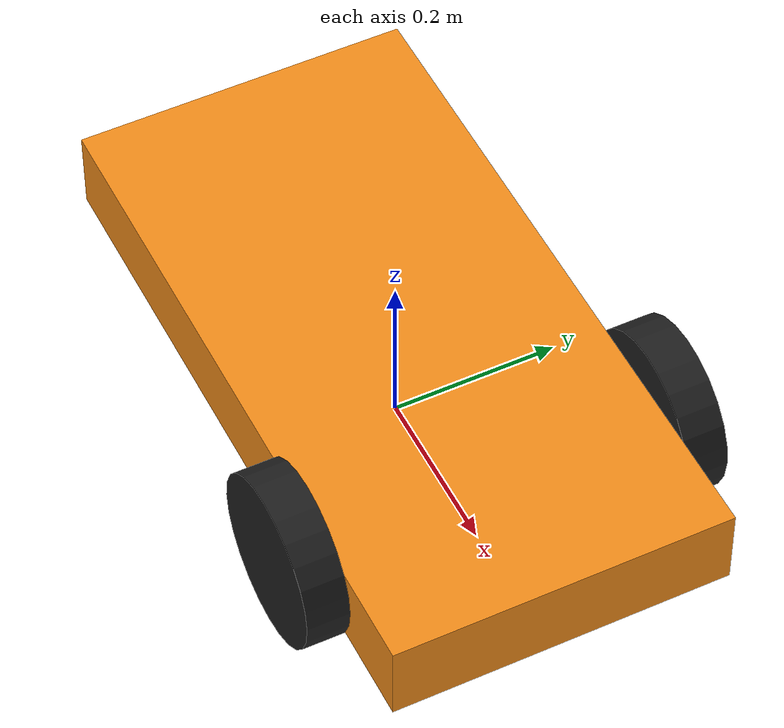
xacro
<?xml version="1.0"?>
<robot name="mybot" xmlns:xacro="http://www.ros.org/wiki/xacro">

  <xacro:property name="PI" value="3.1415926535897931"/>
  <xacro:property name="chassisHeight" value="0.1"/>
  <xacro:property name="chassisLength" value="0.8"/>
  <xacro:property name="chassisWidth" value="0.4"/>
  <xacro:property name="chassisMass" value="50"/>
  <xacro:property name="casterRadius" value="0.05"/>
  <xacro:property name="casterMass" value="5"/>
  <xacro:property name="wheelWidth" value="0.05"/>
  <xacro:property name="wheelRadius" value="0.1"/>
  <xacro:property name="wheelPos" value="0.2"/>
  <xacro:property name="wheelMass" value="5"/>
  <xacro:property name="cameraSize" value="0.05"/>
  <xacro:property name="cameraMass" value="0.1"/>

  <gazebo>
    <plugin name="gazebo_ros_control" filename="libgazebo_ros_control.so">
      <robotNamespace>/mybot</robotNamespace>
      <robotSimType>gazebo_ros_control/DefaultRobotHWSim</robotSimType>
      <!-- gazebo_ros_control/DefaultRobotHWSim,  hector_quadrotor_controller_gazebo/QuadrotorHardwareSim -->
    </plugin>
  </gazebo>

  <macro name="cylinder_inertia" params="m r h">
    <inertia  ixx="${m*(3*r*r+h*h)/12}" ixy = "0" ixz = "0"
              iyy="${m*(3*r*r+h*h)/12}" iyz = "0"
              izz="${m*r*r/2}" />
  </macro>

  <macro name="box_inertia" params="m x y z">
    <inertia  ixx="${m*(y*y+z*z)/12}" ixy = "0" ixz = "0"
              iyy="${m*(x*x+z*z)/12}" iyz = "0"
              izz="${m*(x*x+z*z)/12}" />
  </macro>

  <macro name="sphere_inertia" params="m r">
    <inertia  ixx="${2*m*r*r/5}" ixy = "0" ixz = "0"
              iyy="${2*m*r*r/5}" iyz = "0"
              izz="${2*m*r*r/5}" />
  </macro>

  <macro name="wheel" params="lr tY">

    <joint name="${lr}_wheel_hinge" type="continuous">
      <parent link="chassis"/>
      <child link="${lr}_wheel"/>
      <origin xyz="${-wheelPos+chassisLength/2} ${tY*wheelWidth/2+tY*chassisWidth/2} ${wheelRadius}" rpy="0 0 0" />
      <axis xyz="0 1 0" rpy="0 0 0" />
      <limit effort="100" velocity="100"/>
      <joint_properties damping="0.0" friction="0.0"/>
    </joint>

    <link name="${lr}_wheel">
      <collision>
        <origin xyz="0 0 0" rpy="0 ${PI/2} ${PI/2}" />
        <geometry>
          <cylinder length="${wheelWidth}" radius="${wheelRadius}"/>
        </geometry>
      </collision>

      <visual>
        <origin xyz="0 0 0" rpy="0 ${PI/2} ${PI/2}" />
        <geometry>
          <cylinder length="${wheelWidth}" radius="${wheelRadius}"/>
        </geometry>
      </visual>

      <inertial>
        <origin xyz="0 0 0" rpy="0 ${PI/2} ${PI/2}" />
        <mass value="${wheelMass}"/>
        <cylinder_inertia m="${wheelMass}" r="${wheelRadius}" h="${wheelWidth}"/>
      </inertial>
    </link>

    <gazebo reference="${lr}_wheel">
      <material>Gazebo/Black</material>
    </gazebo>

    <transmission name="${lr}_trans">
      <type>transmission_interface/SimpleTransmission</type>
      <joint name="${lr}_wheel_hinge"><hardwareInterface>EffortJointInterface</hardwareInterface></joint>
      <actuator name="${lr}Motor">
        <hardwareInterface>EffortJointInterface</hardwareInterface>
        <mechanicalReduction>10</mechanicalReduction>
      </actuator>
    </transmission>

  </macro>

  <link name="footprint" />

  <joint name="base_joint" type="fixed">
    <parent link="footprint"/>
    <child link="chassis"/>
  </joint>

  <link name='chassis'>
    <collision>
      <origin xyz="0 0 ${wheelRadius}" rpy="0 0 0"/>
      <geometry>
        <box size="${chassisLength} ${chassisWidth} ${chassisHeight}"/>
      </geometry>
    </collision>
    <visual>
      <origin xyz="0 0 ${wheelRadius}" rpy="0 0 0"/>
        <geometry>
          <box size="${chassisLength} ${chassisWidth} ${chassisHeight}"/>
        </geometry>
      <material name="orange"/>
    </visual>
    <inertial>
      <origin xyz="0 0 ${wheelRadius}" rpy="0 0 0"/>
      <mass value="${chassisMass}"/>
      <box_inertia m="${chassisMass}" x="${chassisLength}" y="${chassisWidth}" z="${chassisHeight}"/>
    </inertial>
  </link>
  <gazebo reference="chassis">
    <material>Gazebo/Orange</material>
  </gazebo>

  <joint name="heart_joint" type="fixed">
    <origin xyz="0 0 ${wheelRadius+chassisHeight*0.5}" rpy="0 0 0"/>
    <parent link="chassis"/>
    <child link="heart"/>
  </joint>

  <link name="heart" />

  <joint name="fixed" type="fixed">
    <parent link="chassis"/>
    <child link="caster_wheel"/>
  </joint>

  <link name="caster_wheel">
    <collision>
      <origin xyz="${casterRadius-chassisLength/2} 0 ${casterRadius-chassisHeight+wheelRadius}" rpy="0 0 0"/>
      <geometry>
        <sphere radius="${casterRadius}"/>
      </geometry>
    </collision>

    <visual>
      <origin xyz="${casterRadius-chassisLength/2} 0 ${casterRadius-chassisHeight+wheelRadius}" rpy="0 0 0"/>
      <geometry>
        <sphere radius="${casterRadius}"/>
      </geometry>
      <material name="red"/>
    </visual>

    <inertial>
      <origin xyz="${casterRadius-chassisLength/2} 0 ${casterRadius-chassisHeight+wheelRadius}" rpy="0 0 0"/>
      <mass value="${casterMass}"/>
      <sphere_inertia m="${casterMass}" r="${casterRadius}"/>
    </inertial>
  </link>
  <gazebo reference="caster_wheel">
    <mu1>0.0</mu1>
    <mu2>0.0</mu2>
    <material>Gazebo/Red</material>
  </gazebo>

  <wheel lr="left" tY="1"/>
  <wheel lr="right" tY="-1"/>

  <gazebo>
    <plugin name="differential_drive_controller" filename="libgazebo_ros_diff_drive.so">
      <alwaysOn>true</alwaysOn>
      <updateRate>100</updateRate>
      <leftJoint>left_wheel_hinge</leftJoint>
      <rightJoint>right_wheel_hinge</rightJoint>
      <wheelSeparation>${chassisWidth+wheelWidth}</wheelSeparation>
      <wheelDiameter>${2*wheelRadius}</wheelDiameter>
      <torque>20</torque>
      <commandTopic>mybot/cmd_vel</commandTopic>
      <odometryTopic>mybot/odom_diffdrive</odometryTopic>
      <odometryFrame>world</odometryFrame>
      <robotBaseFrame>footprint</robotBaseFrame>
    </plugin>
  </gazebo>

</robot>
